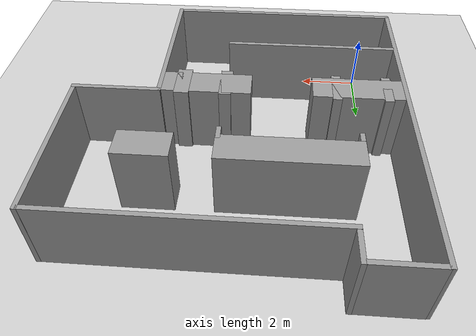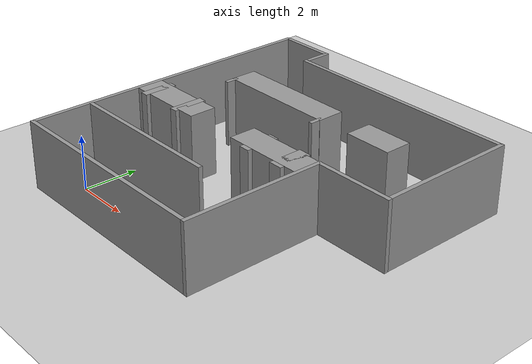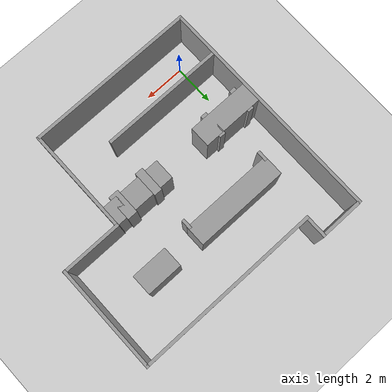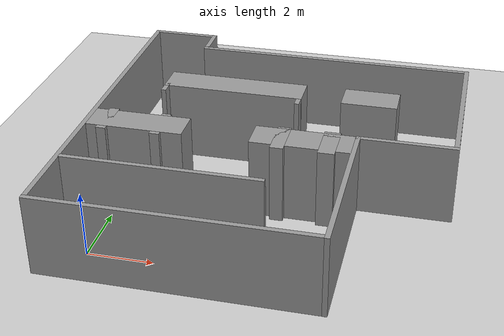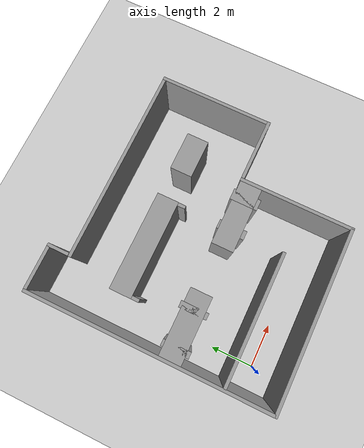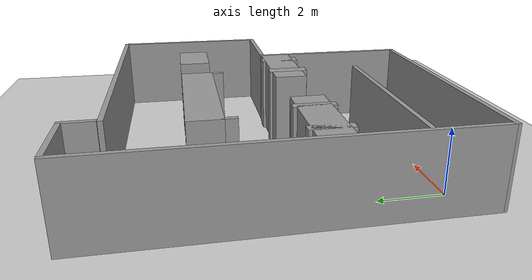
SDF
<sdf version="1.6">
 <world name="default">
  <include><uri>model://ground_plane</uri></include>
  <include><uri>model://sun</uri></include>
  <scene><shadows>false</shadows></scene>
  <physics type="ode">
   <real_time_update_rate>1000.0</real_time_update_rate>
   <max_step_size>0.001</max_step_size>
   <real_time_factor>1</real_time_factor>
   <ode>
    <solver>
     <type>quick</type>
     <iters>150</iters>
     <precon_iters>0</precon_iters>
     <sor>1.400000</sor>
     <use_dynamic_moi_rescaling>1</use_dynamic_moi_rescaling>
    </solver>
    <constraints>
     <cfm>0.00001</cfm>
     <erp>0.2</erp>
     <contact_max_correcting_vel>2000.000000</contact_max_correcting_vel>
     <contact_surface_layer>0.01000</contact_surface_layer>
    </constraints>
   </ode>
  </physics>
  <model name="practice4"><static>1</static><include><uri>model://practice4</uri></include></model>
  <plugin name="gazebo_ros_state" filename="libgazebo_ros_state.so">
   <ros><namespace>/</namespace></ros>
   <update_rate>15</update_rate>
  </plugin>
 </world>
</sdf>

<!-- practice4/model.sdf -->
<sdf version='1.7'>
  <model name='practice4'>
    <pose>3.24673 4.50303 0 0 -0 0</pose>
    <link name='Wall_129'>
      <collision name='Wall_129_Collision'>
        <geometry>
          <box>
            <size>4.5 1 2.5</size>
          </box>
        </geometry>
        <pose>0 0 1.25 0 -0 0</pose>
      </collision>
      <visual name='Wall_129_Visual'>
        <pose>0 0 1.25 0 -0 0</pose>
        <geometry>
          <box>
            <size>4.5 1 2.5</size>
          </box>
        </geometry>
        <material>
          <script>
            <uri>file://media/materials/scripts/gazebo.material</uri>
            <name>Gazebo/Grey</name>
          </script>
          <ambient>1 1 1 1</ambient>
        </material>
        <meta>
          <layer>0</layer>
        </meta>
      </visual>
      <pose>-0.515706 2.008 0 0 -0 0</pose>
    </link>
    <link name='Wall_132'>
      <collision name='Wall_132_Collision'>
        <geometry>
          <box>
            <size>1 0.15 2.5</size>
          </box>
        </geometry>
        <pose>0 0 1.25 0 -0 0</pose>
      </collision>
      <visual name='Wall_132_Visual'>
        <pose>0 0 1.25 0 -0 0</pose>
        <geometry>
          <box>
            <size>1 0.15 2.5</size>
          </box>
        </geometry>
        <material>
          <script>
            <uri>file://media/materials/scripts/gazebo.material</uri>
            <name>Gazebo/Grey</name>
          </script>
          <ambient>1 1 1 1</ambient>
        </material>
        <meta>
          <layer>0</layer>
        </meta>
      </visual>
      <pose>-2.25161 5.18432 0 0 -0 1.5708</pose>
    </link>
    <link name='Wall_134'>
      <collision name='Wall_134_Collision'>
        <geometry>
          <box>
            <size>2 0.15 2.5</size>
          </box>
        </geometry>
        <pose>0 0 1.25 0 -0 0</pose>
      </collision>
      <visual name='Wall_134_Visual'>
        <pose>0 0 1.25 0 -0 0</pose>
        <geometry>
          <box>
            <size>2 0.15 2.5</size>
          </box>
        </geometry>
        <material>
          <script>
            <uri>file://media/materials/scripts/gazebo.material</uri>
            <name>Gazebo/Grey</name>
          </script>
          <ambient>1 1 1 1</ambient>
        </material>
        <meta>
          <layer>0</layer>
        </meta>
      </visual>
      <pose>-3.31036 5.60572 0 0 -0 0</pose>
    </link>
    <link name='Wall_142'>
      <collision name='Wall_142_Collision'>
        <geometry>
          <box>
            <size>0.5 0.15 2.5</size>
          </box>
        </geometry>
        <pose>0 0 1.25 0 -0 0</pose>
      </collision>
      <visual name='Wall_142_Visual'>
        <pose>0 0 1.25 0 -0 0</pose>
        <geometry>
          <box>
            <size>0.5 0.15 2.5</size>
          </box>
        </geometry>
        <material>
          <script>
            <uri>file://media/materials/scripts/gazebo.material</uri>
            <name>Gazebo/Grey</name>
          </script>
          <ambient>1 1 1 1</ambient>
        </material>
        <meta>
          <layer>0</layer>
        </meta>
      </visual>
      <pose>-2.68803 1.41032 0 0 -0 -1.5708</pose>
    </link>
    <link name='Wall_144'>
      <collision name='Wall_144_Collision'>
        <geometry>
          <box>
            <size>0.5 0.15 2.5</size>
          </box>
        </geometry>
        <pose>0 0 1.25 0 -0 0</pose>
      </collision>
      <visual name='Wall_144_Visual'>
        <pose>0 0 1.25 0 -0 0</pose>
        <geometry>
          <box>
            <size>0.5 0.15 2.5</size>
          </box>
        </geometry>
        <material>
          <script>
            <uri>file://media/materials/scripts/gazebo.material</uri>
            <name>Gazebo/Grey</name>
          </script>
          <ambient>1 1 1 1</ambient>
        </material>
        <meta>
          <layer>0</layer>
        </meta>
      </visual>
      <pose>1.64977 1.41032 0 0 -0 -1.5708</pose>
    </link>
    <link name='Wall_146'>
      <collision name='Wall_146_Collision'>
        <geometry>
          <box>
            <size>1.75 1 2.5</size>
          </box>
        </geometry>
        <pose>0 0 1.25 0 -0 0</pose>
      </collision>
      <visual name='Wall_146_Visual'>
        <pose>0 0 1.25 0 -0 0</pose>
        <geometry>
          <box>
            <size>1.75 1 2.5</size>
          </box>
        </geometry>
        <material>
          <script>
            <uri>file://media/materials/scripts/gazebo.material</uri>
            <name>Gazebo/Grey</name>
          </script>
          <ambient>1 1 1 1</ambient>
        </material>
        <meta>
          <layer>0</layer>
        </meta>
      </visual>
      <pose>3.86267 2.02185 0 0 -0 0</pose>
    </link>
    <link name='Wall_15'>
      <collision name='Wall_15_Collision'>
        <geometry>
          <box>
            <size>6 0.15 2.5</size>
          </box>
        </geometry>
        <pose>0 0 1.25 0 -0 0</pose>
      </collision>
      <visual name='Wall_15_Visual'>
        <pose>0 0 1.25 0 -0 0</pose>
        <geometry>
          <box>
            <size>6 0.15 2.5</size>
          </box>
        </geometry>
        <material>
          <script>
            <uri>file://media/materials/scripts/gazebo.material</uri>
            <name>Gazebo/Grey</name>
          </script>
          <ambient>1 1 1 1</ambient>
        </material>
        <meta>
          <layer>0</layer>
        </meta>
      </visual>
      <pose>-1.29311 -3.39814 0 0 -0 0</pose>
    </link>
    <link name='Wall_37'>
      <collision name='Wall_37_Collision'>
        <geometry>
          <box>
            <size>9 0.15 2.5</size>
          </box>
        </geometry>
        <pose>0 0 1.25 0 -0 0</pose>
      </collision>
      <visual name='Wall_37_Visual'>
        <pose>0 0 1.25 0 -0 0</pose>
        <geometry>
          <box>
            <size>9 0.15 2.5</size>
          </box>
        </geometry>
        <material>
          <script>
            <uri>file://media/materials/scripts/gazebo.material</uri>
            <name>Gazebo/Grey</name>
          </script>
          <ambient>1 1 1 1</ambient>
        </material>
        <meta>
          <layer>0</layer>
        </meta>
      </visual>
      <pose>2.17374 4.60091 0 0 -0 0</pose>
    </link>
    <link name='Wall_39'>
      <collision name='Wall_39_Collision'>
        <geometry>
          <box>
            <size>8.25 0.15 2.5</size>
          </box>
        </geometry>
        <pose>0 0 1.25 0 -0 0</pose>
      </collision>
      <visual name='Wall_39_Visual'>
        <pose>0 0 1.25 0 -0 0</pose>
        <geometry>
          <box>
            <size>8.25 0.15 2.5</size>
          </box>
        </geometry>
        <material>
          <script>
            <uri>file://media/materials/scripts/gazebo.material</uri>
            <name>Gazebo/Grey</name>
          </script>
          <ambient>1 1 1 1</ambient>
        </material>
        <meta>
          <layer>0</layer>
        </meta>
      </visual>
      <pose>-0.291193 -5.60614 0 0 -0 3.14159</pose>
    </link>
    <link name='Wall_45'>
      <collision name='Wall_45_Collision'>
        <geometry>
          <box>
            <size>3 1 2.5</size>
          </box>
        </geometry>
        <pose>0 0 1.25 0 -0 0</pose>
      </collision>
      <visual name='Wall_45_Visual'>
        <pose>0 0 1.25 0 -0 0</pose>
        <geometry>
          <box>
            <size>3 1 2.5</size>
          </box>
        </geometry>
        <material>
          <script>
            <uri>file://media/materials/scripts/gazebo.material</uri>
            <name>Gazebo/Grey</name>
          </script>
          <ambient>1 1 1 1</ambient>
        </material>
        <meta>
          <layer>0</layer>
        </meta>
      </visual>
      <pose>-2.77218 -0.985478 0 0 -0 0</pose>
    </link>
    <link name='Wall_47'>
      <collision name='Wall_47_Collision'>
        <geometry>
          <box>
            <size>3 1 2.5</size>
          </box>
        </geometry>
        <pose>0 0 1.25 0 -0 0</pose>
      </collision>
      <visual name='Wall_47_Visual'>
        <pose>0 0 1.25 0 -0 0</pose>
        <geometry>
          <box>
            <size>3 1 2.5</size>
          </box>
        </geometry>
        <material>
          <script>
            <uri>file://media/materials/scripts/gazebo.material</uri>
            <name>Gazebo/Grey</name>
          </script>
          <ambient>1 1 1 1</ambient>
        </material>
        <meta>
          <layer>0</layer>
        </meta>
      </visual>
      <pose>2.26132 -0.970182 0 0 -0 0</pose>
    </link>
    <link name='Wall_49'>
      <collision name='Wall_49_Collision'>
        <geometry>
          <box>
            <size>1.25 0.3 2.5</size>
          </box>
        </geometry>
        <pose>0 0 1.25 0 -0 0</pose>
      </collision>
      <visual name='Wall_49_Visual'>
        <pose>0 0 1.25 0 -0 0</pose>
        <geometry>
          <box>
            <size>1.25 0.3 2.5</size>
          </box>
        </geometry>
        <material>
          <script>
            <uri>file://media/materials/scripts/gazebo.material</uri>
            <name>Gazebo/Grey</name>
          </script>
          <ambient>1 1 1 1</ambient>
        </material>
        <meta>
          <layer>0</layer>
        </meta>
      </visual>
      <pose>-3.74189 -1.00828 0 0 -0 -1.5708</pose>
    </link>
    <link name='Wall_5'>
      <collision name='Wall_5_Collision'>
        <geometry>
          <box>
            <size>11.25 0.15 2.5</size>
          </box>
        </geometry>
        <pose>0 0 1.25 0 -0 0</pose>
      </collision>
      <visual name='Wall_5_Visual'>
        <pose>0 0 1.25 0 -0 0</pose>
        <geometry>
          <box>
            <size>11.25 0.15 2.5</size>
          </box>
        </geometry>
        <material>
          <script>
            <uri>file://media/materials/scripts/gazebo.material</uri>
            <name>Gazebo/Grey</name>
          </script>
          <ambient>1 1 1 1</ambient>
        </material>
        <meta>
          <layer>0</layer>
        </meta>
      </visual>
      <pose>-4.34473 0.04489 0 0 -0 1.5708</pose>
    </link>
    <link name='Wall_51'>
      <collision name='Wall_51_Collision'>
        <geometry>
          <box>
            <size>1.25 0.3 2.5</size>
          </box>
        </geometry>
        <pose>0 0 1.25 0 -0 0</pose>
      </collision>
      <visual name='Wall_51_Visual'>
        <pose>0 0 1.25 0 -0 0</pose>
        <geometry>
          <box>
            <size>1.25 0.3 2.5</size>
          </box>
        </geometry>
        <material>
          <script>
            <uri>file://media/materials/scripts/gazebo.material</uri>
            <name>Gazebo/Grey</name>
          </script>
          <ambient>1 1 1 1</ambient>
        </material>
        <meta>
          <layer>0</layer>
        </meta>
      </visual>
      <pose>-2.06895 -1.00196 0 0 -0 -1.5708</pose>
    </link>
    <link name='Wall_53'>
      <collision name='Wall_53_Collision'>
        <geometry>
          <box>
            <size>1.25 0.5 2.5</size>
          </box>
        </geometry>
        <pose>0 0 1.25 0 -0 0</pose>
      </collision>
      <visual name='Wall_53_Visual'>
        <pose>0 0 1.25 0 -0 0</pose>
        <geometry>
          <box>
            <size>1.25 0.5 2.5</size>
          </box>
        </geometry>
        <material>
          <script>
            <uri>file://media/materials/scripts/gazebo.material</uri>
            <name>Gazebo/Grey</name>
          </script>
          <ambient>1 1 1 1</ambient>
        </material>
        <meta>
          <layer>0</layer>
        </meta>
      </visual>
      <pose>3.07156 -1.00303 0 0 -0 -1.5708</pose>
    </link>
    <link name='Wall_55'>
      <collision name='Wall_55_Collision'>
        <geometry>
          <box>
            <size>1.25 0.4 2.5</size>
          </box>
        </geometry>
        <pose>0 0 1.25 0 -0 0</pose>
      </collision>
      <visual name='Wall_55_Visual'>
        <pose>0 0 1.25 0 -0 0</pose>
        <geometry>
          <box>
            <size>1.25 0.4 2.5</size>
          </box>
        </geometry>
        <material>
          <script>
            <uri>file://media/materials/scripts/gazebo.material</uri>
            <name>Gazebo/Grey</name>
          </script>
          <ambient>1 1 1 1</ambient>
        </material>
        <meta>
          <layer>0</layer>
        </meta>
      </visual>
      <pose>1.626 -1.01516 0 0 -0 -1.5708</pose>
    </link>
    <link name='Wall_66'>
      <collision name='Wall_66_Collision'>
        <geometry>
          <box>
            <size>5.25 0.15 2.5</size>
          </box>
        </geometry>
        <pose>0 0 1.25 0 -0 0</pose>
      </collision>
      <visual name='Wall_66_Visual'>
        <pose>0 0 1.25 0 -0 0</pose>
        <geometry>
          <box>
            <size>5.25 0.15 2.5</size>
          </box>
        </geometry>
        <material>
          <script>
            <uri>file://media/materials/scripts/gazebo.material</uri>
            <name>Gazebo/Grey</name>
          </script>
          <ambient>1 1 1 1</ambient>
        </material>
        <meta>
          <layer>0</layer>
        </meta>
      </visual>
      <pose>6.69049 2.05391 0 0 -0 1.5708</pose>
    </link>
    <link name='Wall_8'>
      <collision name='Wall_8_Collision'>
        <geometry>
          <box>
            <size>5.25 0.15 2.5</size>
          </box>
        </geometry>
        <pose>0 0 1.25 0 -0 0</pose>
      </collision>
      <visual name='Wall_8_Visual'>
        <pose>0 0 1.25 0 -0 0</pose>
        <geometry>
          <box>
            <size>5.25 0.15 2.5</size>
          </box>
        </geometry>
        <material>
          <script>
            <uri>file://media/materials/scripts/gazebo.material</uri>
            <name>Gazebo/Grey</name>
          </script>
          <ambient>1 1 1 1</ambient>
        </material>
        <meta>
          <layer>0</layer>
        </meta>
      </visual>
      <pose>3.82727 -3.05932 0 0 -0 -1.5708</pose>
    </link>
    <link name='Wall_84'>
      <collision name='Wall_84_Collision'>
        <geometry>
          <box>
            <size>3 0.15 2.5</size>
          </box>
        </geometry>
        <pose>0 0 1.25 0 -0 0</pose>
      </collision>
      <visual name='Wall_84_Visual'>
        <pose>0 0 1.25 0 -0 0</pose>
        <geometry>
          <box>
            <size>3 0.15 2.5</size>
          </box>
        </geometry>
        <material>
          <script>
            <uri>file://media/materials/scripts/gazebo.material</uri>
            <name>Gazebo/Grey</name>
          </script>
          <ambient>1 1 1 1</ambient>
        </material>
        <meta>
          <layer>0</layer>
        </meta>
      </visual>
      <pose>5.27173 -0.507309 0 0 -0 0</pose>
    </link>

    <static>1</static>
  </model>
</sdf>
